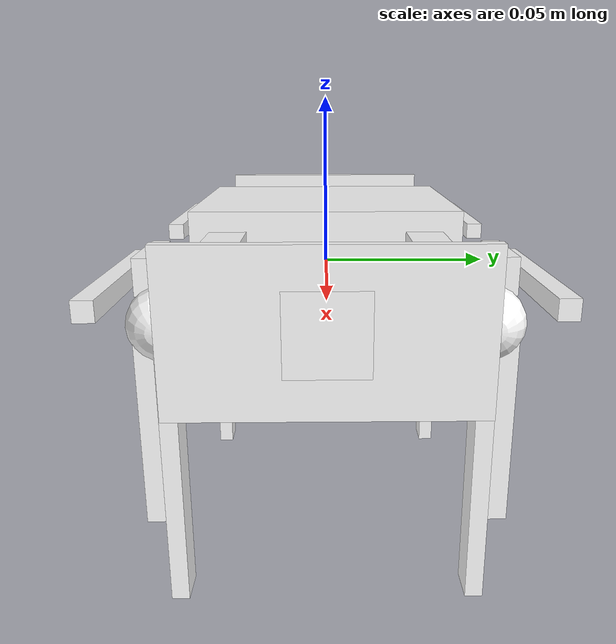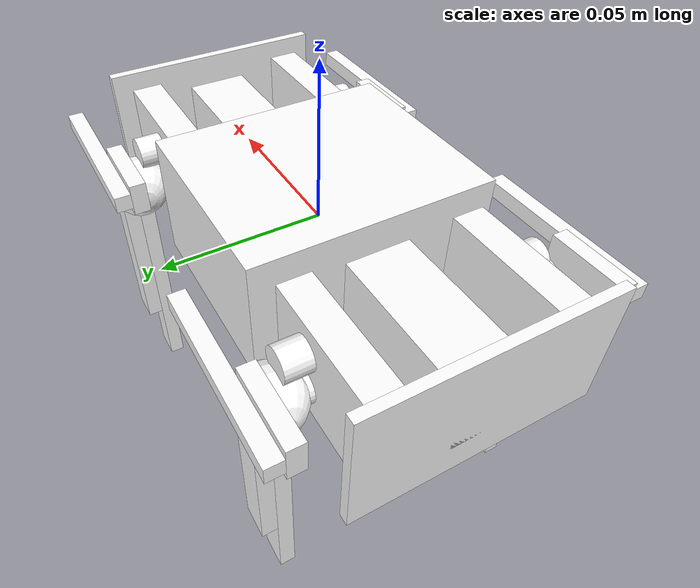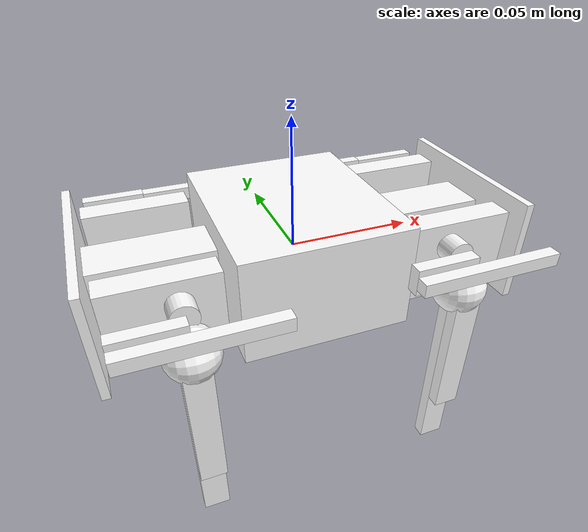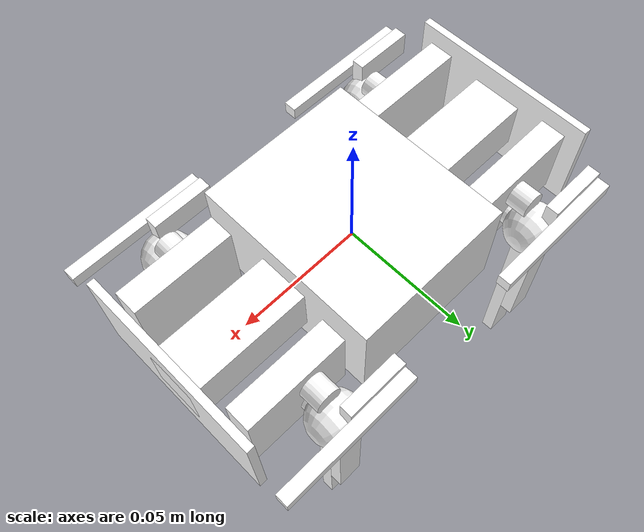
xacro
<?xml version="1.0"?>
<robot name="spotmicro" xmlns:xacro="http://ros.org/wiki/xacro">
<xacro:property name="radius" value="0.01" />
<xacro:property name="offset_y" value="0.0265" />
<xacro:property name="offset_x" value="0.055" />
<xacro:property name="offset_z" value="0.0" />
<xacro:property name="a" value="0.006" />
<xacro:property name="b" value="0.02" />
<xacro:property name="c" value="0.055" />
<xacro:property name="d" value="0.005" />
<xacro:property name="e" value="0.055" />

<xacro:include filename="$(find spotmicro)/urdf/common.xacro" />

<material name="black">
    <color rgba="0.0 0.0 0.0 1.0"/>
</material>
<material name="yellow">
    <color rgba="1.0 1.0 0.0 1.0"/>
</material>
<material name="white">
    <color rgba="1.0 1.0 1.0 1.0"/>
</material>

<xacro:macro name="leg" params="name l f">
    <joint name="${name}0" type="revolute">
        <parent link="base_link"/>
        <child link="${name}a"/>
        <axis xyz="1 0 0"/>
        <origin xyz="${offset_x*f} ${offset_y*l} ${offset_z}" rpy="0 0 0"/>
        <limit lower="${-pi/4}" upper="${pi/4}" effort="1000.0" velocity="10.0"/>
    </joint>
    <link name="${name}a">
        <visual>
            <geometry>
                <box size="0.04 0.01 0.03" />
            </geometry>
            <origin xyz="0 0 0" rpy="0 0 0"/>
            <material name="white"/>
        </visual>
        <visual>
            <geometry>
                <cylinder radius="0.005" length="0.008"/>
            </geometry>
            <origin xyz="${-0.005*f} ${l*0.009} ${a}" rpy="${pi/2} 0 0"/>
            <material name="white"/>
        </visual>
        <visual>
            <geometry>
                <cylinder radius="0.005" length="0.008"/>
            </geometry>
            <origin xyz="${-0.005*f} ${l*0.009} ${-a}" rpy="${pi/2} 0 0"/>
            <material name="white"/>
        </visual>
        <collision>
            <geometry>
                <box size="0.045 0.075 0.025"/>
            </geometry>
            <origin rpy="0 0 0" xyz="0 0 0"/>
        </collision>
        <xacro:box_inertial x="0.24" y="0.11" z="0.065" mass="0.02"/>
    </link>
    <gazebo reference="${name}a">
        <material>Gazebo/White</material>
        <kp>1000000.0</kp>
        <kd>100.0</kd>
        <mu1>100</mu1>
        <mu2>100</mu2>
    </gazebo>
    <joint name="${name}1" type="revolute">
        <parent link="${name}a"/>
        <child link="${name}b"/>
        <axis xyz="1 0 0"/>
        <origin xyz="${-0.005*f} ${l*b} ${-a}" rpy="${-pi/2} 0 ${pi/2}"/>
        <limit lower="${-pi/4}" upper="${pi*3/4}" effort="1000.0" velocity="10.0"/>
    </joint>
    <link name="${name}b">
        <visual>
            <geometry>
                <box size="0.005 ${c} 0.01"/>
            </geometry>
            <origin xyz="0 ${c/2} 0" rpy="0 0 0"/>
            <material name="white"/>
        </visual>
        <collision>
            <geometry>
                <box size="0.005 ${c} 0.01"/>
            </geometry>
            <origin xyz="0 ${c/2} 0" rpy="0 0 0"/>
        </collision>
        <xacro:box_inertial_with_origin x="0.005" y="${c}" z="0.01" mass="0.01">
            <origin xyz="0 ${c/2} 0" rpy="0 0 0"/>
        </xacro:box_inertial_with_origin>
    </link>
    <gazebo reference="${name}b">
        <material>Gazebo/White</material>
        <kp>1000000.0</kp>
        <kd>100.0</kd>
        <mu1>100</mu1>
        <mu2>100</mu2>
    </gazebo>
    <joint name="${name}2" type="revolute">
        <parent link="${name}b"/>
        <child link="${name}c"/>
        <axis xyz="1 0 0"/>
        <origin xyz="${-d*l} ${c} 0" rpy="${-pi} 0 0"/>
        <limit lower="0" upper="${pi}" effort="1000.0" velocity="10.0"/>
    </joint>
    <link name="${name}c">
        <visual>
            <geometry>
                <box size="${d} ${e+0.025} 0.01"/>
            </geometry>
            <origin xyz="0 ${(e-0.025)/2} 0" rpy="0 0 0"/>
            <material name="white"/>
        </visual>
        <collision>
            <geometry>
                <box size="${d} ${e+0.025} 0.01"/>
            </geometry>
            <origin xyz="0 ${(e-0.025)/2} 0" rpy="0 0 0"/>
        </collision>
        <xacro:box_inertial_with_origin x="${d}" y="${e+0.025}" z="0.01" mass="0.01">
            <origin xyz="0 ${(e-0.025)/2} 0" rpy="0 0 0"/>
        </xacro:box_inertial_with_origin>
    </link>
    <gazebo reference="${name}c">
        <material>Gazebo/White</material>
        <kp>1000000.0</kp>
        <kd>100.0</kd>
        <mu1>100</mu1>
        <mu2>100</mu2>
    </gazebo>
    <joint name="${name}t" type="fixed">
        <parent link="${name}c"/>
        <child link="${name}d"/>
        <origin xyz="0 ${e} 0" rpy="0 0 0"/>
    </joint>
    <link name="${name}d">
        <visual>
            <geometry>
                <sphere radius="0.01"/>
            </geometry>
            <origin xyz="0 0 0" rpy="0 0 0"/>
            <material name="white"/>
        </visual>
        <collision>
            <geometry>
                <sphere radius="0.01"/>
            </geometry>
            <origin xyz="0 0 0" rpy="0 0 0"/>
        </collision>
        <xacro:sphere_inertial radius="0.01" mass="0.001"/>
    </link>
    <gazebo reference="${name}d">
        <material>Gazebo/White</material>
        <kp>1000000.0</kp>
        <kd>1.0</kd>
        <mu1>200</mu1>
        <mu2>100</mu2>
    </gazebo>
    <joint name="${name}3" type="revolute">
        <parent link="${name}a"/>
        <child link="${name}e"/>
        <axis xyz="1 0 0"/>
        <origin xyz="${-0.005*f} ${l*b} ${a}" rpy="0 0 ${pi/2}"/>
        <limit lower="${-pi/4}" upper="${pi*3/4}" effort="1000.0" velocity="10.0"/>
    </joint>
    <link name="${name}e">
        <visual>
            <geometry>
                <box size="0.005 0.024 0.01"/>
            </geometry>
            <origin xyz="0 ${0.024/2} 0" rpy="0 0 0"/>
            <material name="white"/>
        </visual>
        <collision>
            <geometry>
                <box size="0.005 0.024 0.01"/>
            </geometry>
            <origin xyz="0 ${0.024/2} 0" rpy="0 0 0"/>
        </collision>
        <xacro:box_inertial_with_origin x="0.005" y="0.024" z="0.01" mass="0.001">
            <origin xyz="0 ${0.024/2} 0" rpy="0 0 0"/>
        </xacro:box_inertial_with_origin>
    </link>
    <gazebo reference="${name}e">
        <material>Gazebo/White</material>
        <kp>1000000.0</kp>
        <kd>1.0</kd>
        <mu1>200</mu1>
        <mu2>100</mu2>
    </gazebo>
    <joint name="${name}4" type="revolute">
        <parent link="${name}e"/>
        <child link="${name}f"/>
        <axis xyz="1 0 0"/>
        <origin xyz="${0.005*l} 0.024 0" rpy="${-pi} 0 0"/>
        <limit lower="${-pi}" upper="${pi}" effort="1000.0" velocity="10.0"/>
    </joint>
    <link name="${name}f">
        <visual>
            <geometry>
                <box size="0.005 0.055 0.005"/>
            </geometry>
            <origin xyz="0 ${0.055/2} 0" rpy="0 0 0"/>
            <material name="white"/>
        </visual>
        <collision>
            <geometry>
                <box size="0.005 0.055 0.005"/>
            </geometry>
            <origin xyz="0 ${0.055/2} 0" rpy="0 0 0"/>
        </collision>
        <xacro:box_inertial_with_origin x="0.005" y="0.055" z="0.005" mass="0.005">
            <origin xyz="0 ${0.055/2} 0" rpy="0 0 0"/>
        </xacro:box_inertial_with_origin>
    </link>
    <gazebo reference="${name}f">
        <material>Gazebo/White</material>
        <kp>1000000.0</kp>
        <kd>1.0</kd>
        <mu1>200</mu1>
        <mu2>100</mu2>
    </gazebo>
</xacro:macro>

<link name="base_link">
    <visual>
        <geometry>
            <box size="0.16 0.02 0.02"/>
        </geometry>
        <material name="white"/>
    </visual>
    <visual>
        <geometry>
            <box size="0.064 0.075 0.04"/>
        </geometry>
        <material name="white"/>
    </visual>
    <visual>
        <geometry>
            <box size="0.003 0.075 0.04"/>
        </geometry>
        <origin xyz="${0.16/2-0.0015} 0 0" rpy="0 0 0"/>
        <material name="white"/>
    </visual>
    <visual>
        <geometry>
            <box size="0.003 0.075 0.04"/>
        </geometry>
        <origin xyz="${-0.16/2+0.0015} 0 0" rpy="0 0 0"/>
        <material name="white"/>
    </visual>
    <collision>
        <geometry>
            <box size="0.16 0.075 0.04"/>
        </geometry>
        <origin rpy="0 0 0" xyz="0 0 0"/>
    </collision>
    <xacro:box_inertial_with_origin x="0.16" y="0.075" z="0.04" mass="0.3">
        <origin xyz="0.0 0 0" rpy="0 0 0"/>
    </xacro:box_inertial_with_origin>
</link>
<gazebo reference="base_link">
        <material>Gazebo/White</material>
        <kp>1000000.0</kp>
        <kd>100.0</kd>
        <mu1>100</mu1>
        <mu2>100</mu2>
    </gazebo>

<xacro:leg name="lf" l="1" f="1"/>
<xacro:leg name="lr" l="1" f="-1"/>
<xacro:leg name="rf" l="-1" f="1"/>
<xacro:leg name="rr" l="-1" f="-1"/>

    <xacro:macro name="transmission_block" params="joint_name">
      <transmission name="${joint_name}_tran">
        <type>transmission_interface/SimpleTransmission</type>
        <joint name="${joint_name}">
          <hardwareInterface>hardware_interface/PositionJointInterface</hardwareInterface>
        </joint>
        <actuator name="${joint_name}_motor">
          <hardwareInterface>hardware_interface/PositionJointInterface</hardwareInterface>
          <mechanicalReduction>1</mechanicalReduction>
        </actuator>
      </transmission>
    </xacro:macro>

 <!-- Transmissions for ROS Control -->

   <xacro:transmission_block joint_name="lf0"/>
   <xacro:transmission_block joint_name="lf1"/>
   <xacro:transmission_block joint_name="lf2"/>
   <xacro:transmission_block joint_name="lf3"/>
   <xacro:transmission_block joint_name="lf4"/>
   <xacro:transmission_block joint_name="rf0"/>
   <xacro:transmission_block joint_name="rf1"/>
   <xacro:transmission_block joint_name="rf2"/>
   <xacro:transmission_block joint_name="rf3"/>
   <xacro:transmission_block joint_name="rf4"/>
   <xacro:transmission_block joint_name="lr0"/>
   <xacro:transmission_block joint_name="lr1"/>
   <xacro:transmission_block joint_name="lr2"/>
   <xacro:transmission_block joint_name="lr3"/>
   <xacro:transmission_block joint_name="lr4"/>
   <xacro:transmission_block joint_name="rr0"/>
   <xacro:transmission_block joint_name="rr1"/>
   <xacro:transmission_block joint_name="rr2"/>
   <xacro:transmission_block joint_name="rr3"/>
   <xacro:transmission_block joint_name="rr4"/>

<!-- ros_control plugin -->
  <gazebo>
    <plugin name="gazebo_ros_control" filename="libgazebo_ros_control.so">
      <robotSimType>motion_control/GaitHWSim</robotSimType>
    </plugin>
  </gazebo>

</robot>

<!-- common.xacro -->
<!-- https://github.com/uos/uos_tools/blob/fuerte/uos_common_urdf/common.xacro -->

<robot
  xmlns:xacro="http://ros.org/wiki/xacro">
  <property name="M_PI" value="3.1415926535897931" />

  <!-- see https://secure.wikimedia.org/wikipedia/en/wiki/List_of_moment_of_inertia_tensors -->

  <!-- #################### versions without origin #################### -->
  <xacro:macro name="sphere_inertial" params="radius mass">
    <inertial>
      <mass value="${mass}" />
      <origin xyz="0 0 0" />
      <inertia ixx="${0.4 * mass * radius * radius}" ixy="0.0" ixz="0.0"
        iyy="${0.4 * mass * radius * radius}" iyz="0.0"
        izz="${0.4 * mass * radius * radius}" />
    </inertial>
  </xacro:macro>

  <xacro:macro name="cylinder_inertial" params="radius length mass">
    <inertial>
      <mass value="${mass}" />
      <origin xyz="0 0 0" />
      <inertia ixx="${0.0833333 * mass * (3 * radius * radius + length * length)}" ixy="0.0" ixz="0.0"
        iyy="${0.0833333 * mass * (3 * radius * radius + length * length)}" iyz="0.0"
        izz="${0.5 * mass * radius * radius}" />
    </inertial>
  </xacro:macro>

  <xacro:macro name="box_inertial" params="x y z mass">
    <inertial>
      <mass value="${mass}" />
      <origin xyz="0 0 0" />
      <inertia ixx="${0.0833333 * mass * (y*y + z*z)}" ixy="0.0" ixz="0.0"
        iyy="${0.0833333 * mass * (x*x + z*z)}" iyz="0.0"
        izz="${0.0833333 * mass * (x*x + y*y)}" />
    </inertial>
  </xacro:macro>

  <!-- #################### versions with origin #################### -->
  <xacro:macro name="sphere_inertial_with_origin" params="radius mass *origin">
    <inertial>
      <mass value="${mass}" />
      <insert_block name="origin" />
      <inertia ixx="${0.4 * mass * radius * radius}" ixy="0.0" ixz="0.0"
        iyy="${0.4 * mass * radius * radius}" iyz="0.0"
        izz="${0.4 * mass * radius * radius}" />
    </inertial>
  </xacro:macro>

  <xacro:macro name="cylinder_inertial_with_origin" params="radius length mass *origin">
    <inertial>
      <mass value="${mass}" />
      <insert_block name="origin" />
      <inertia ixx="${0.0833333 * mass * (3 * radius * radius + length * length)}" ixy="0.0" ixz="0.0"
        iyy="${0.0833333 * mass * (3 * radius * radius + length * length)}" iyz="0.0"
        izz="${0.5 * mass * radius * radius}" />
    </inertial>
  </xacro:macro>

  <xacro:macro name="box_inertial_with_origin" params="x y z mass *origin">
    <inertial>
      <mass value="${mass}" />
      <insert_block name="origin" />
      <inertia ixx="${0.0833333 * mass * (y*y + z*z)}" ixy="0.0" ixz="0.0"
        iyy="${0.0833333 * mass * (x*x + z*z)}" iyz="0.0"
        izz="${0.0833333 * mass * (x*x + y*y)}" />
    </inertial>
  </xacro:macro>

</robot>
